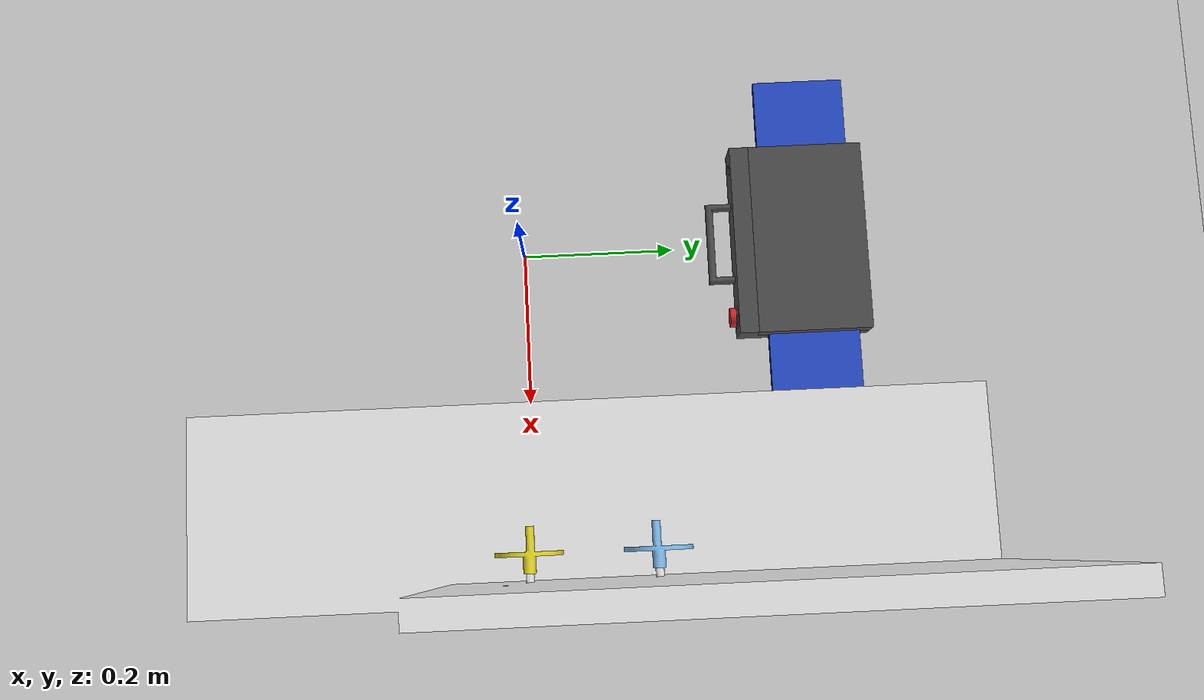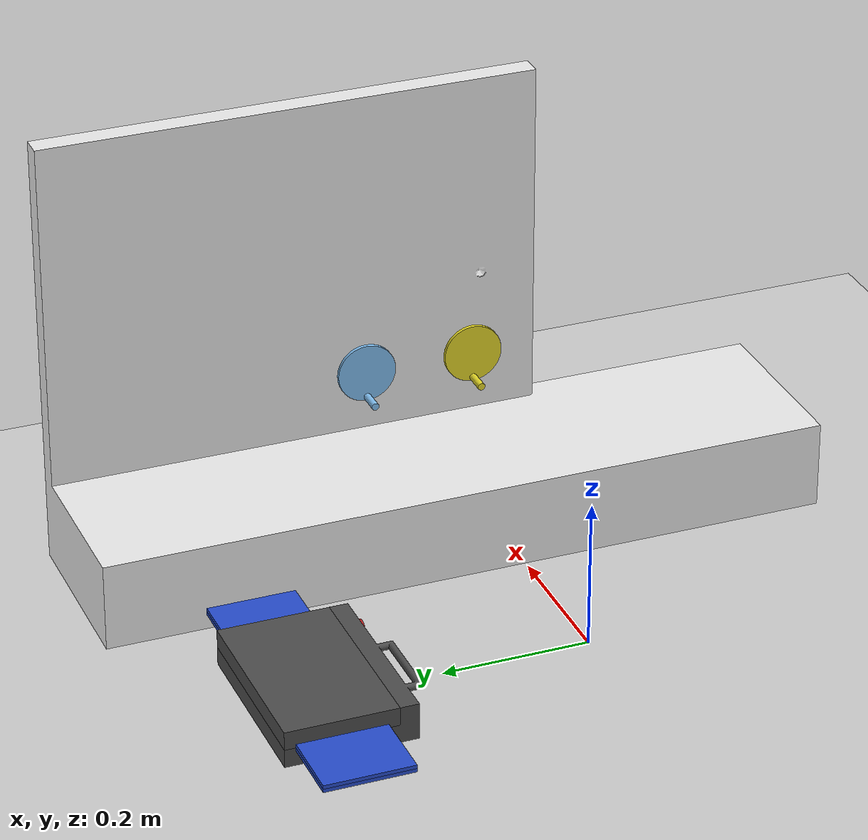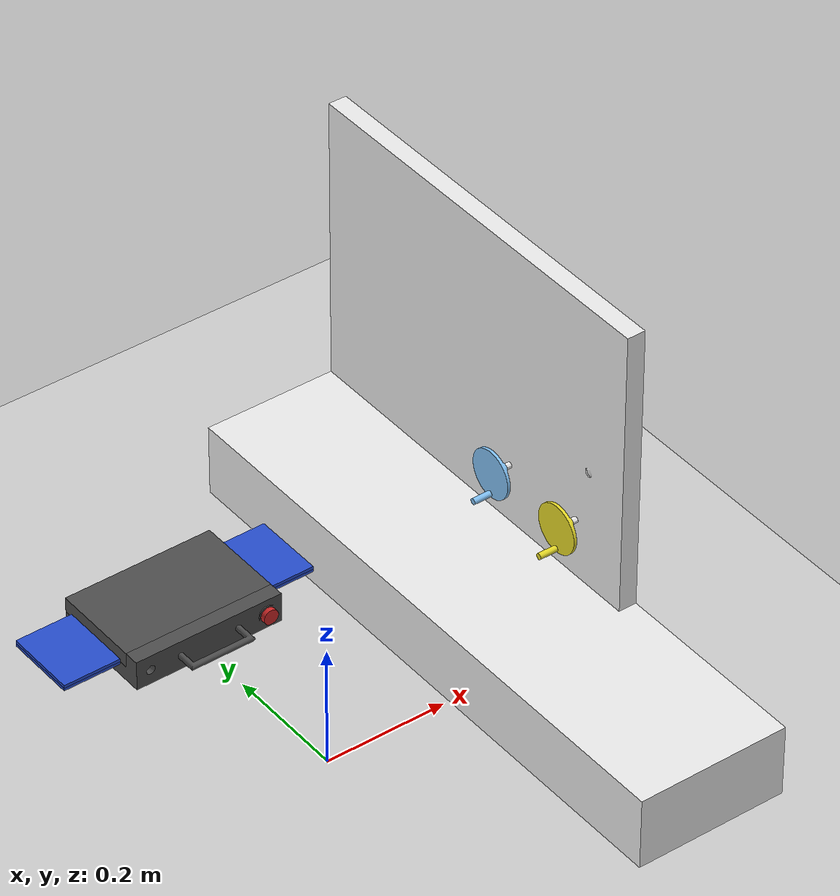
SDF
<?xml version="1.0"?>
<sdf version="1.7">
  <world name="default">
    <include>
      <uri>model://ground_plane</uri>
    </include>
    <include>
      <uri>model://sun</uri>
    </include>
    <include>
      <uri>model://eva_panel</uri>
      <pose>0.430 -0.425 0.12 0.0 0.0 1.570796326</pose>
    </include>
    <include>
      <uri>model://solar_panel</uri>
      <pose>0.0 0.38 0.0 1.570796326 0.0 -1.570796326</pose>
    </include>
  </world>
</sdf>

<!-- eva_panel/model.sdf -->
<sdf version="1.7">
  <model name="eva_panel">

    <link name="station">
      <pose>0.0 0.0 0.0 0.0 0.0 0.0</pose>
      <inertial>
        <mass>100.0</mass>
        <pose>0.0 0.0 0.0 0.0 0.0 0.0</pose>
        <inertia>
          <ixx>1.0</ixx>
          <ixy>0.0</ixy>
          <ixz>0.0</ixz>
          <iyy>1.0</iyy>
          <iyz>0.0</iyz>
          <izz>1.0</izz>
        </inertia>
      </inertial>
      <visual name="station_visual">
        <geometry>
          <mesh>
            <uri>model://eva_panel/meshes/eva_station.stl</uri>
            <scale>0.001 0.001 0.001</scale>
          </mesh>
        </geometry>
        <material>
          <script>
            <uri>file://media/materials/scripts/gazebo.material</uri>
            <name>Gazebo/White</name>
          </script>
        </material>
      </visual>
      <collision name="station_collision">
        <geometry>
          <mesh>
            <uri>model://eva_panel/meshes/eva_station.stl</uri>
            <scale>0.001 0.001 0.001</scale>
          </mesh>
        </geometry>
      </collision>
    </link>

    <link name="yaw_handle">
      <pose>0.425 0.030 0.100 0.0 0.0 0.0</pose>
      <inertial>
        <mass>0.080</mass>
        <pose>0.0 0.0 0.0 0.0 0.0 0.0</pose>
        <inertia>
          <ixx>0.001</ixx>
          <ixy>0.0</ixy>
          <ixz>0.0</ixz>
          <iyy>0.001</iyy>
          <iyz>0.0</iyz>
          <izz>0.001</izz>
        </inertia>
      </inertial>
      <visual name="yaw_dial_visual">
        <geometry>
          <mesh>
            <uri>model://eva_panel/meshes/dial_handle.stl</uri>
            <scale>0.001 0.001 0.001</scale>
          </mesh>
        </geometry>
        <material>
          <script>
            <uri>file://media/materials/scripts/gazebo.material</uri>
            <name>Gazebo/Yellow</name>
          </script>
        </material>
      </visual>
      <collision name="yaw_dial_collision">
        <geometry>
          <mesh>
            <uri>model://eva_panel/meshes/dial_handle.stl</uri>
            <scale>0.001 0.001 0.001</scale>
          </mesh>
        </geometry>
      </collision>
    </link>

    <link name="pitch_handle">
      <pose>0.575 0.030 0.100 0.0 0.0 0.0</pose>
      <inertial>
        <mass>0.080</mass>
        <pose>0.0 0.0 0.0 0.0 0.0 0.0</pose>
        <inertia>
          <ixx>0.001</ixx>
          <ixy>0.0</ixy>
          <ixz>0.0</ixz>
          <iyy>0.001</iyy>
          <iyz>0.0</iyz>
          <izz>0.001</izz>
        </inertia>
      </inertial>
      <visual name="pitch_dial_visual">
        <geometry>
          <mesh>
            <uri>model://eva_panel/meshes/dial_handle.stl</uri>
            <scale>0.001 0.001 0.001</scale>
          </mesh>
        </geometry>
        <material>
          <script>
            <uri>file://media/materials/scripts/gazebo.material</uri>
            <name>Gazebo/SkyBlue</name>
          </script>
        </material>
      </visual>
      <collision name="pitch_dial_collision">
        <geometry>
          <mesh>
            <uri>model://eva_panel/meshes/dial_handle.stl</uri>
            <scale>0.001 0.001 0.001</scale>
          </mesh>
        </geometry>
      </collision>
    </link>

    <joint name="fixed" type="fixed">
      <parent>world</parent>
      <child>station</child>
    </joint>

    <joint name="yaw_dial" type="revolute">
      <parent>station</parent>
      <child>yaw_handle</child>
      <pose>0.0 0.0 0.0 0.0 0.0 0.0</pose>
      <axis>
      	<xyz>0.0 1.0 0.0</xyz>
      </axis>
    </joint>

    <joint name="pitch_dial" type="revolute">
      <parent>station</parent>
      <child>pitch_handle</child>
      <pose>0.0 0.0 0.0 0.0 0.0 0.0</pose>
      <axis>
      	<xyz>0.0 1.0 0.0</xyz>
      </axis>
    </joint>

  </model>
</sdf>

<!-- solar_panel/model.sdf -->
<sdf version="1.7">
  <model name="solar_panel">
    <link name="base">
      <pose>0.0 0.0 0.0 0.0 0.0 0.0</pose>
      <inertial>
        <mass>0.5</mass>
        <inertia>
          <ixx>0.003</ixx>
          <ixy>0.0</ixy>
          <ixz>0.0</ixz>
          <iyy>0.005</iyy>
          <iyz>0.0</iyz>
          <izz>0.002</izz>
        </inertia>
      </inertial>
      <visual name="base_visual">
        <geometry>
          <mesh>
            <uri>model://solar_panel/meshes/briefcase_half_2.stl</uri>
            <scale>0.001 0.001 0.001</scale>
          </mesh>
        </geometry>
        <material>
          <script>
            <uri>file://media/materials/scripts/gazebo.material</uri>
            <name>Gazebo/DarkGrey</name>
          </script>
        </material>
      </visual>
      <collision name="base_collision">
        <geometry>
          <mesh>
            <uri>model://solar_panel/meshes/briefcase_half_2.stl</uri>
            <scale>0.001 0.001 0.001</scale>
          </mesh>
        </geometry>
      </collision>
    </link>

    <link name="lid">
      <pose>0.0 0.05 0.0 3.141592653 0.0 0.0</pose>
      <inertial>
        <mass>0.35</mass>
        <inertia>
          <ixx>0.002</ixx>
          <ixy>0.0</ixy>
          <ixz>0.0</ixz>
          <iyy>0.003</iyy>
          <iyz>0.0</iyz>
          <izz>0.001</izz>
        </inertia>
      </inertial>
      <visual name="lid_visual">
        <geometry>
          <mesh>
            <uri>model://solar_panel/meshes/briefcase_half_1.stl</uri>
            <scale>0.001 0.001 0.001</scale>
          </mesh>
        </geometry>
        <material>
          <script>
            <uri>file://media/materials/scripts/gazebo.material</uri>
            <name>Gazebo/DarkGrey</name>
          </script>
        </material>
      </visual>
      <collision name="lid_collision">
        <geometry>
          <mesh>
            <uri>model://solar_panel/meshes/briefcase_half_1.stl</uri>
            <scale>0.001 0.001 0.001</scale>
          </mesh>
        </geometry>
      </collision>
    </link>

    <link name="panel1">
      <pose>0.0 0.025 0.165 0.0 0.0 0.0</pose>
      <inertial>
        <mass>0.01</mass>
        <inertia>
          <ixx>0.002</ixx>
          <ixy>0.0</ixy>
          <ixz>0.0</ixz>
          <iyy>0.003</iyy>
          <iyz>0.0</iyz>
          <izz>0.001</izz>
        </inertia>
      </inertial>
      <visual name="panel1_visual">
        <geometry>
          <mesh>
            <uri>model://solar_panel/meshes/solar_panel.stl</uri>
            <scale>0.001 0.001 0.001</scale>
          </mesh>
        </geometry>
        <material>
          <script>
            <uri>file://media/materials/scripts/gazebo.material</uri>
            <name>Gazebo/Blue</name>
          </script>
        </material>
      </visual>
      <collision name="panel1_collision">
        <geometry>
          <mesh>
            <uri>model://solar_panel/meshes/solar_panel.stl</uri>
            <scale>0.001 0.001 0.001</scale>
          </mesh>
        </geometry>
      </collision>
    </link>

    <link name="panel2">
      <pose>0.0 0.025 -0.165 0.0 0.0 0.0</pose>
      <inertial>
        <mass>0.01</mass>
        <inertia>
          <ixx>0.002</ixx>
          <ixy>0.0</ixy>
          <ixz>0.0</ixz>
          <iyy>0.003</iyy>
          <iyz>0.0</iyz>
          <izz>0.001</izz>
        </inertia>
      </inertial>
      <visual name="panel2_visual">
        <geometry>
          <mesh>
            <uri>model://solar_panel/meshes/solar_panel.stl</uri>
            <scale>0.001 0.001 0.001</scale>
          </mesh>
        </geometry>
        <material>
          <script>
            <uri>file://media/materials/scripts/gazebo.material</uri>
            <name>Gazebo/Blue</name>
          </script>
        </material>
      </visual>
      <collision name="panel2_collision">
        <geometry>
          <mesh>
            <uri>model://solar_panel/meshes/solar_panel.stl</uri>
            <scale>0.001 0.001 0.001</scale>
          </mesh>
        </geometry>
      </collision>
    </link>

    <link name="panel3">
      <pose>0.0 0.02 0.165 0.0 0.0 0.0</pose>
      <inertial>
        <mass>0.01</mass>
        <inertia>
          <ixx>0.002</ixx>
          <ixy>0.0</ixy>
          <ixz>0.0</ixz>
          <iyy>0.003</iyy>
          <iyz>0.0</iyz>
          <izz>0.001</izz>
        </inertia>
      </inertial>
      <visual name="panel3_visual">
        <geometry>
          <mesh>
            <uri>model://solar_panel/meshes/solar_panel.stl</uri>
            <scale>0.001 0.001 0.001</scale>
          </mesh>
        </geometry>
        <material>
          <script>
            <uri>file://media/materials/scripts/gazebo.material</uri>
            <name>Gazebo/Blue</name>
          </script>
        </material>
      </visual>
      <collision name="panel3_collision">
        <geometry>
          <mesh>
            <uri>model://solar_panel/meshes/solar_panel.stl</uri>
            <scale>0.001 0.001 0.001</scale>
          </mesh>
        </geometry>
      </collision>
    </link>

    <link name="panel4">
      <pose>0.0 0.02 -0.165 0.0 0.0 0.0</pose>
      <inertial>
        <mass>0.01</mass>
        <inertia>
          <ixx>0.002</ixx>
          <ixy>0.0</ixy>
          <ixz>0.0</ixz>
          <iyy>0.003</iyy>
          <iyz>0.0</iyz>
          <izz>0.001</izz>
        </inertia>
      </inertial>
      <visual name="panel4_visual">
        <geometry>
          <mesh>
            <uri>model://solar_panel/meshes/solar_panel.stl</uri>
            <scale>0.001 0.001 0.001</scale>
          </mesh>
        </geometry>
        <material>
          <script>
            <uri>file://media/materials/scripts/gazebo.material</uri>
            <name>Gazebo/Blue</name>
          </script>
        </material>
      </visual>
      <collision name="panel4_collision">
        <geometry>
          <mesh>
            <uri>model://solar_panel/meshes/solar_panel.stl</uri>
            <scale>0.001 0.001 0.001</scale>
          </mesh>
        </geometry>
      </collision>
    </link>

    <link name="button">
      <pose>0.100 0.025 -0.100225 0.0 0.0 -1.570796326</pose>
      <inertial>
        <mass>0.01</mass>
        <inertia>
          <ixx>0.002</ixx>
          <ixy>0.0</ixy>
          <ixz>0.0</ixz>
          <iyy>0.003</iyy>
          <iyz>0.0</iyz>
          <izz>0.001</izz>
        </inertia>
      </inertial>
      <visual name="button_visual">
        <geometry>
          <mesh>
            <uri>model://solar_panel/meshes/button.stl</uri>
            <scale>0.001 0.001 0.001</scale>
          </mesh>
        </geometry>
        <material>
          <script>
            <uri>file://media/materials/scripts/gazebo.material</uri>
            <name>Gazebo/Red</name>
          </script>
        </material>
      </visual>
      <collision name="button_collision">
        <geometry>
          <mesh>
            <uri>model://solar_panel/meshes/button.stl</uri>
            <scale>0.001 0.001 0.001</scale>
          </mesh>
        </geometry>
      </collision>
    </link>
    <joint name="lid_hinge" type="revolute">
      <parent>base</parent>
      <child>lid</child>
      <pose>-0.075 0.025 0.0 0.0 0.0 0.0</pose>
      <axis>
      	<xyz>0.0 0.0 -1.0</xyz>
      	<limit>
      	  <lower>0.0</lower>
      	  <upper>3.141592653</upper>
      	</limit>
      </axis>
    </joint>

    <joint name="panel1_hinge" type="revolute">
      <parent>base</parent>
      <child>panel1</child>
      <pose>0.0 0.0 -0.055 0.0 0.0 0.0</pose>
      <axis>
      	<xyz>-1.0 0.0 0.0</xyz>
      	<limit>
      	  <lower>0.0</lower>
      	  <upper>3.141592653</upper>
      	</limit>
      </axis>
    </joint>

    <joint name="panel2_hinge" type="revolute">
      <parent>base</parent>
      <child>panel2</child>
      <pose>0.0 0.0 0.055 0.0 0.0 0.0</pose>
      <axis>
      	<xyz>1.0 0.0 0.0</xyz>
      	<limit>
      	  <lower>0.0</lower>
      	  <upper>3.141592653</upper>
      	</limit>
      </axis>
    </joint>

    <joint name="panel3_hinge" type="revolute">
      <parent>lid</parent>
      <child>panel3</child>
      <pose>0.0 0.005 -0.055 0.0 0.0 0.0</pose>
      <axis>
      	<xyz>1.0 0.0 0.0</xyz>
      	<limit>
      	  <lower>0.0</lower>
      	  <upper>3.141592653</upper>
      	</limit>
      </axis>
    </joint>

    <joint name="panel4_hinge" type="revolute">
      <parent>lid</parent>
      <child>panel4</child>
      <pose>0.0 0.005 0.055 0.0 0.0 0.0</pose>
      <axis>
      	<xyz>-1.0 0.0 0.0</xyz>
      	<limit>
      	  <lower>0.0</lower>
      	  <upper>3.141592653</upper>
      	</limit>
      </axis>
    </joint>

    <joint name="button_push" type="prismatic">
      <parent>base</parent>
      <child>button</child>
      <pose>0.0 0.0 0.0 0.0 0.0 0.0</pose>
      <axis>
      	<xyz>0.0 -1.0 0.0</xyz>
      	<limit>
      	  <lower>-0.0001</lower>
      	  <upper>0.003</upper>
      	</limit>
      </axis>
    </joint>

  </model>
</sdf>
